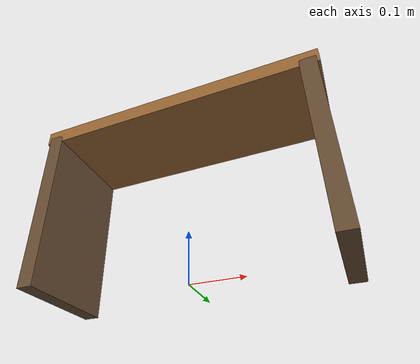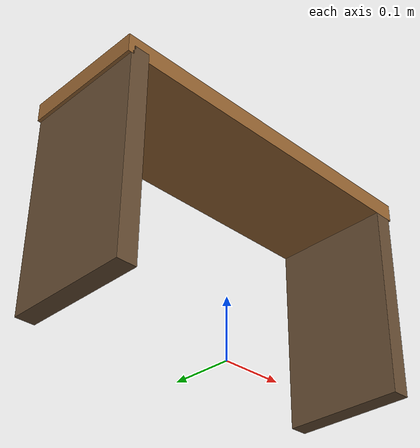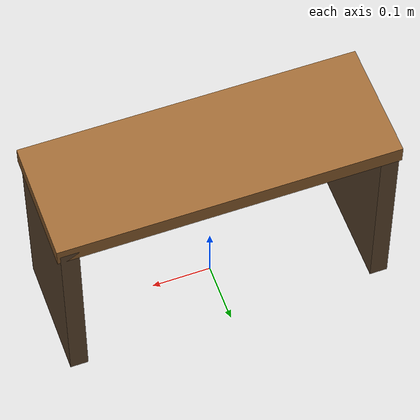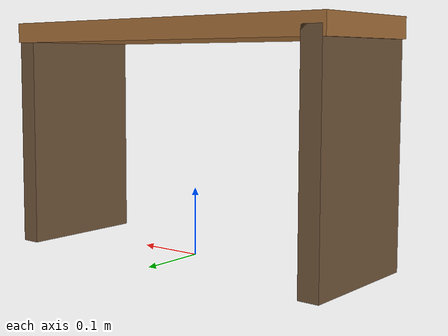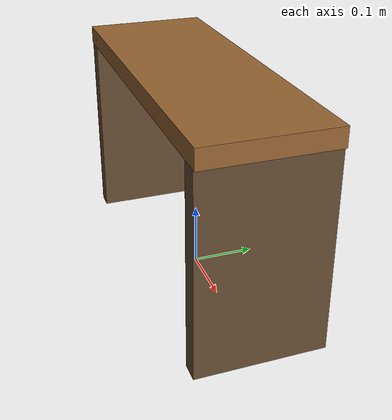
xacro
<?xml version="1.0"?>
<robot name="shelf" xmlns:xacro="http://ros.org/wiki/xacro">

  <link name="shelf">
    <!-- 상판 -->
    <visual>
      <geometry>
        <box size="0.56 0.20 0.03"/>
      </geometry>
      <origin xyz="0 0 0.33" rpy="0 0 0"/>
      <material name="wood_top">
        <color rgba="0.6 0.4 0.2 1"/>
      </material>
    </visual>
    <collision>
      <geometry>
        <box size="0.56 0.20 0.03"/>
      </geometry>
      <origin xyz="0 0 0.33" rpy="0 0 0"/>
    </collision>

    <!-- 왼쪽 다리 -->
    <visual>
      <geometry>
        <box size="0.03 0.20 0.33"/>
      </geometry>
      <origin xyz="-0.26 0 0.165" rpy="0 0 0"/>
      <material name="wood_leg">
        <color rgba="0.4 0.3 0.2 1"/>
      </material>
    </visual>
    <collision>
      <geometry>
        <box size="0.03 0.20 0.33"/>
      </geometry>
      <origin xyz="-0.26 0 0.165" rpy="0 0 0"/>
    </collision>

    <!-- 오른쪽 다리 -->
    <visual>
      <geometry>
        <box size="0.03 0.20 0.33"/>
      </geometry>
      <origin xyz="0.26 0 0.165" rpy="0 0 0"/>
      <material name="wood_leg"/>
    </visual>
    <collision>
      <geometry>
        <box size="0.03 0.20 0.33"/>
      </geometry>
      <origin xyz="0.26 0 0.165" rpy="0 0 0"/>
    </collision>
  </link>

</robot>
